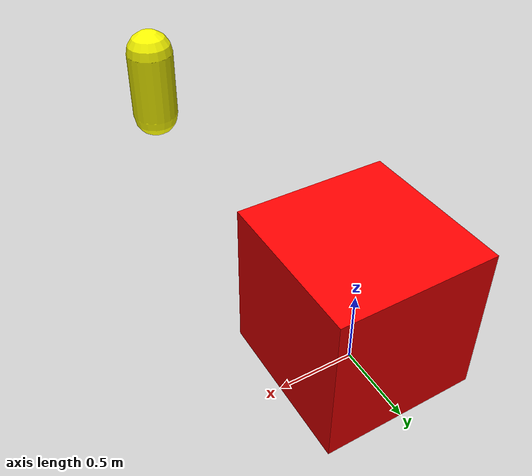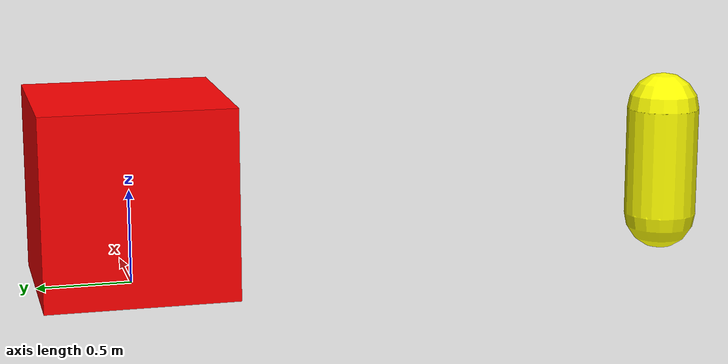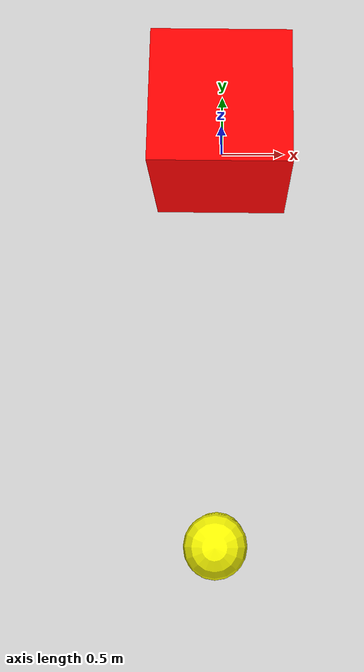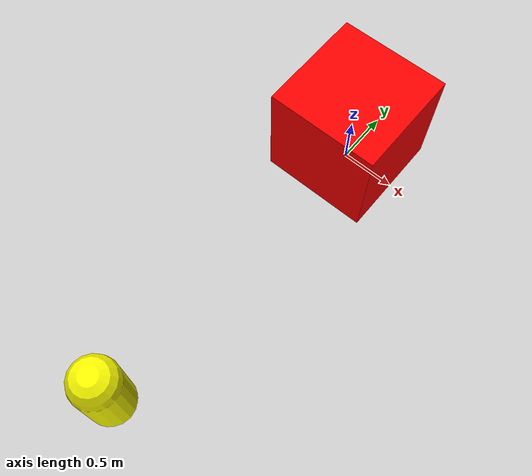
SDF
<?xml version="1.0" ?>
<!-- created the tutorial: https://gazebosim.org/docs/all/sdf_worlds/ -->
<sdf version="1.8">
    <world name="world_demo">
        <physics name="1ms" type="ignored">
            <max_step_size>0.001</max_step_size>
            <real_time_factor>1.0</real_time_factor>
        </physics>
        <plugin
            filename="gz-sim-physics-system"
            name="gz::sim::systems::Physics">
        </plugin>
        <plugin
            filename="gz-sim-user-commands-system"
            name="gz::sim::systems::UserCommands">
        </plugin>
        <plugin
            filename="gz-sim-scene-broadcaster-system"
            name="gz::sim::systems::SceneBroadcaster">
        </plugin>

        <gui fullscreen="0">

            <plugin filename="GzScene3D" name="3D View">
            <gz-gui>
              <title>3D View</title>
              <property key="showTitleBar" type="bool">true</property>
              <property key="resizable" type="bool">true</property>
              <property key="z" type="double">0</property>
              <anchor line="right" target="window" target_line="right"/>
              <anchor line="left" target="window" target_line="left"/>
              <anchor line="top" target="window" target_line="top"/>
              <anchor line="bottom" target="window" target_line="bottom"/>
            </gz-gui>
            <engine>ogre2</engine>
            <scene>scene</scene>
            <ambient_light>0.4 0.4 0.4</ambient_light>
            <background_color>0.8 0.8 0.8</background_color>
            <camera_pose>-6 0 6 0 0.5 0</camera_pose>
            </plugin>

            <!-- World control -->
            <plugin filename="WorldControl" name="World control">
                <gz-gui>
                    <title>World control</title>
                    <property type="bool" key="showTitleBar">true</property>
                    <property type="bool" key="resizable">true</property>
                    <property type="double" key="height">72</property>
                    <property type="double" key="width">121</property>
                    <property type="double" key="z">1</property>

                    <property type="string" key="state">docked</property>
                    <anchors target="3D View">
                    <line own="left" target="left"/>
                    <line own="bottom" target="bottom"/>
                    </anchors>
                </gz-gui>

                <play_pause>true</play_pause>
                <step>true</step>
                <start_paused>true</start_paused>
                <service>/world/world_demo/control</service>
                <stats_topic>/world/world_demo/stats</stats_topic>
            </plugin>

            <!-- World statistics -->
            <plugin filename="WorldStats" name="World stats">
                <gz-gui>
                    <title>World stats</title>
                    <property type="bool" key="showTitleBar">true</property>
                    <property type="bool" key="resizable">true</property>
                    <property type="double" key="height">110</property>
                    <property type="double" key="width">290</property>
                    <property type="double" key="z">1</property>

                    <property type="string" key="state">docked</property>
                    <anchors target="3D View">
                    <line own="right" target="right"/>
                    <line own="bottom" target="bottom"/>
                    </anchors>
                </gz-gui>

                <sim_time>true</sim_time>
                <real_time>true</real_time>
                <real_time_factor>true</real_time_factor>
                <iterations>true</iterations>
                <topic>/world/world_demo/stats</topic>

            </plugin>

            <plugin filename="EntityTree" name="Entity tree">
              <gz-gui>
                <property type="bool" key="showTitleBar">true</property>
                <property type="bool" key="resizable">true</property>
                <property type="string" key="state">docked_collapsed</property>
              </gz-gui>
            </plugin>

            <plugin filename="ComponentInspectorEditor" name="ComponentInspectorEditor">
              <gz-gui>
                <property type="bool" key="showTitleBar">true</property>
                <property type="bool" key="resizable">true</property>
                <property type="string" key="state">docked</property>
              </gz-gui>
            </plugin>

            <plugin filename="TransformControl" name="TransformControl">
              <gz-gui>
                <property type="bool" key="showTitleBar">true</property>
                <property type="bool" key="resizable">true</property>
                <property type="string" key="state">docked</property>
              </gz-gui>
            </plugin>

            <plugin filename="CaptureSamples" name="CaptureSamples">
              <gz-gui>
                <title>Capture Samples</title>
                <property type="bool" key="showTitleBar">true</property>
                <property type="string" key="state">docked</property>
              </gz-gui>
              <camera_pose>-6 0 6 0 0.5 0</camera_pose>
            </plugin>

        </gui>

        <light type="directional" name="sun">
            <cast_shadows>true</cast_shadows>
            <pose>0 0 10 0 0 0</pose>
            <diffuse>0.8 0.8 0.8 1</diffuse>
            <specular>0.2 0.2 0.2 1</specular>
            <attenuation>
                <range>1000</range>
                <constant>0.9</constant>
                <linear>0.01</linear>
                <quadratic>0.001</quadratic>
            </attenuation>
            <direction>-0.5 0.1 -0.9</direction>
        </light>

        <model name="box">
          <pose>0 0 0.5 0 0 0</pose>
          <static>true</static>
          <link name="box_link">
            <inertial>
              <inertia>
                <ixx>0.16666</ixx>
                <ixy>0</ixy>
                <ixz>0</ixz>
                <iyy>0.16666</iyy>
                <iyz>0</iyz>
                <izz>0.16666</izz>
              </inertia>
              <mass>1.0</mass>
            </inertial>
            <collision name="box_collision">
              <geometry>
                <box>
                  <size>1 1 1</size>
                </box>
              </geometry>
            </collision>

            <visual name="box_visual">
              <geometry>
                <box>
                  <size>1 1 1</size>
                </box>
              </geometry>
              <material>
                <ambient>1 0 0 1</ambient>
                <diffuse>1 0 0 1</diffuse>
                <specular>1 0 0 1</specular>
              </material>
            </visual>
          </link>
        </model>

        <model name="capsule">
          <pose>0 -3.0 0.5 0 0 0</pose>
          <static>true</static>
          <link name="capsule_link">
            <inertial>
              <inertia>
                <ixx>0.074154</ixx>
                <ixy>0</ixy>
                <ixz>0</ixz>
                <iyy>0.074154</iyy>
                <iyz>0</iyz>
                <izz>0.018769</izz>
              </inertia>
              <mass>1.0</mass>
            </inertial>
            <collision name="capsule_collision">
              <geometry>
                <capsule>
                  <radius>0.2</radius>
                  <length>0.6</length>
                </capsule>
              </geometry>
            </collision>
            <visual name="capsule_visual">
              <geometry>
                <capsule>
                  <radius>0.2</radius>
                  <length>0.6</length>
                </capsule>
              </geometry>
              <material>
                <ambient>1 1 0 1</ambient>
                <diffuse>1 1 0 1</diffuse>
                <specular>1 1 0 1</specular>
              </material>
            </visual>
          </link>
        </model>

    </world>
</sdf>
